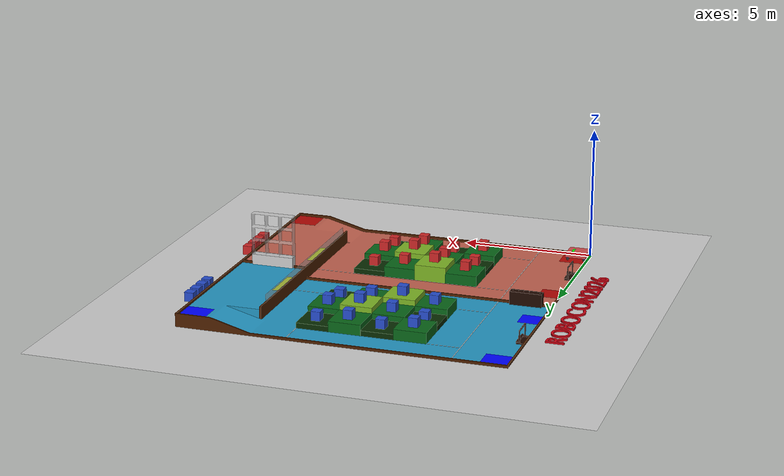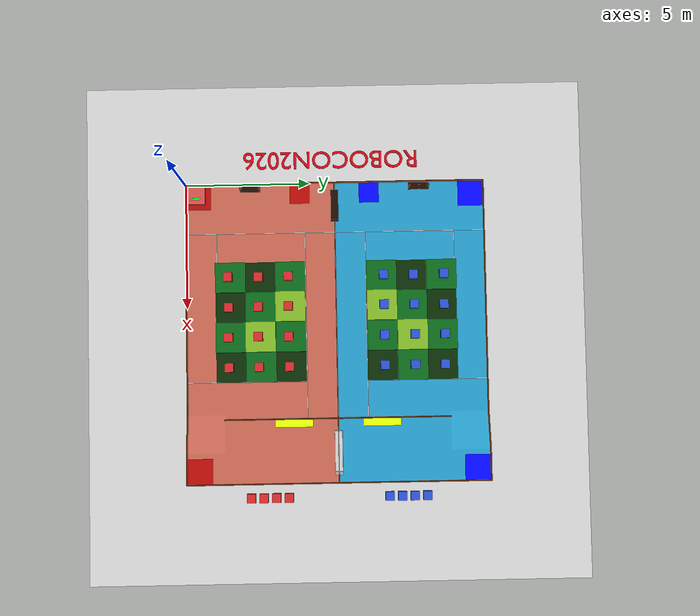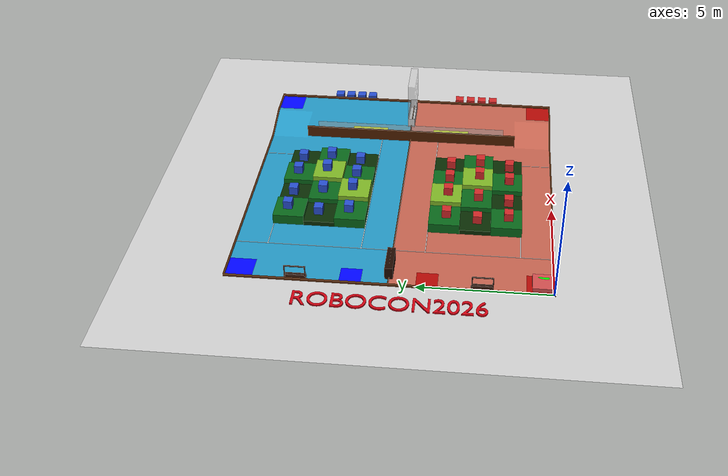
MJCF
<mujoco model="Four_Wheel_Swerve_Chassis">
    <compiler angle="degree" coordinate="local" meshdir="./"/>

    <option gravity="0 0 -9.81" timestep="0.001" iterations="100" tolerance="1e-12">
        <flag contact="enable" energy="enable"/>
    </option>

    <include file="robocon2026_bridge.xml"/>

    <asset>
        <texture type="skybox" builtin="gradient" rgb1="0.3 0.5 0.7" rgb2="0 0 0" width="512" height="512"/>
        <texture name="texplane" type="2d" builtin="checker" rgb1=".2 .3 .4" rgb2=".1 0.15 0.2" width="512" height="512" mark="cross" markrgb=".8 .8 .8"/>
        <material name="matplane" reflectance="0.3" texture="texplane" texrepeat="2 2" texuniform="true"/>
    </asset>

    <worldbody>
        <light directional="true" diffuse=".8 .8 .8" specular=".2 .2 .2" pos="0 0 10" dir="0 0 -1"/>

        <body name="chassis" pos="0.4 0.4 0.209" euler="0 0 0">
            <freejoint name="root"/>

            <geom name="chassis_visual_main" type="box" size="0.4 0.4 0.08" pos="0 0 -0.0" rgba="0.8 0.3 0.3 1" contype="0" conaffinity="0" mass="0"/>

            <geom name="chassis_mass" type="box" size="0.35 0.25 0.04" pos="0.18 0.057 0.0" rgba="0.8 0.3 0.3 0" mass="16" contype="0" conaffinity="0"/>
            <body name="wheel0_pivot" pos="0.325 0.325 -0.093">
                <joint name="wheel0_steer" type="hinge" axis="0 0 1" damping="2.0" armature="0.01"/>
                <geom type="cylinder" size="0.04 0.02" rgba="0.3 0.3 0.8 1" mass="0.5" contype="0" conaffinity="0"/>
                <body name="wheel0" pos="0 0 -0.058">
                    <joint name="wheel0_drive" type="hinge" axis="0 1 0" damping="2.0" armature="0.05"/>
                    <geom type="cylinder" size="0.058 0.02" zaxis="0 1 0" rgba="0.2 0.2 0.2 1" friction="2.5 0.01 0.005" mass="1.0" contype="1" conaffinity="1"/>
                </body>
            </body>

            <body name="wheel1_pivot" pos="0.325 -0.325 -0.093">
                <joint name="wheel1_steer" type="hinge" axis="0 0 1" damping="2.0" armature="0.01"/>
                <geom type="cylinder" size="0.04 0.02" rgba="0.3 0.3 0.8 1" mass="0.5" contype="0" conaffinity="0"/>
                <body name="wheel1" pos="0 0 -0.058">
                    <joint name="wheel1_drive" type="hinge" axis="0 1 0" damping="2.0" armature="0.05"/>
                    <geom type="cylinder" size="0.058 0.02" zaxis="0 1 0" rgba="0.2 0.2 0.2 1" friction="2.5 0.01 0.005" mass="1.0" contype="1" conaffinity="1"/>
                </body>
            </body>

            <body name="wheel2_pivot" pos="-0.325 0.325 -0.093">
                <joint name="wheel2_steer" type="hinge" axis="0 0 1" damping="2.0" armature="0.01"/>
                <geom type="cylinder" size="0.04 0.02" rgba="0.3 0.3 0.8 1" mass="0.5" contype="0" conaffinity="0"/>
                <body name="wheel2" pos="0 0 -0.058">
                    <joint name="wheel2_drive" type="hinge" axis="0 1 0" damping="2.0" armature="0.05"/>
                    <geom type="cylinder" size="0.058 0.02" zaxis="0 1 0" rgba="0.2 0.2 0.2 1" friction="2.5 0.01 0.005" mass="1.0" contype="1" conaffinity="1"/>
                </body>
            </body>

            <body name="wheel3_pivot" pos="-0.325 -0.325 -0.093">
                <joint name="wheel3_steer" type="hinge" axis="0 0 1" damping="2.0" armature="0.01"/>
                <geom type="cylinder" size="0.04 0.02" rgba="0.3 0.3 0.8 1" mass="0.5" contype="0" conaffinity="0"/>
                <body name="wheel3" pos="0 0 -0.058">
                    <joint name="wheel3_drive" type="hinge" axis="0 1 0" damping="2.0" armature="0.05"/>
                    <geom type="cylinder" size="0.058 0.02" zaxis="0 1 0" rgba="0.2 0.2 0.2 1" friction="2.5 0.01 0.005" mass="1.0" contype="1" conaffinity="1"/>
                </body>
            </body>

            <geom name="head_marker" type="box" size="0.05 0.2 0.01" pos="0.18 0 0.07" rgba="0 1 0 1" contype="0" conaffinity="0" mass="0"/>
        </body>
    </worldbody>
    <actuator>
        <position joint="wheel0_steer" name="steer0" kp="50" forcerange="-300 300"/>
        <velocity joint="wheel0_drive" name="drive0" kv="40" forcerange="-180 180"/>
        <position joint="wheel1_steer" name="steer1" kp="50" forcerange="-300 300"/>
        <velocity joint="wheel1_drive" name="drive1" kv="40" forcerange="-180 180"/>
        <position joint="wheel2_steer" name="steer2" kp="50" forcerange="-300 300"/>
        <velocity joint="wheel2_drive" name="drive2" kv="40" forcerange="-180 180"/>
        <position joint="wheel3_steer" name="steer3" kp="50" forcerange="-300 300"/>
        <velocity joint="wheel3_drive" name="drive3" kv="40" forcerange="-180 180"/>
    </actuator>
</mujoco>

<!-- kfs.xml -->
<mujocoinclude>

    <body name="kfs_red_R1_00" pos="7.400 4.100 0.38">
      <joint type="free" damping="1e-4"/>
      <inertial pos="0 0 0" mass="0.01" diaginertia="0.002 0.002 0.002"/>
      <geom group="1" class="scene_collision" conaffinity="1" mesh="kfs_01" material="kfs_R1_KFS_red" />
    </body>
    <body name="kfs_red_01" pos="5.000 4.100 0.78">
      <joint type="free" damping="1e-4"/>
      <inertial pos="0 0 0" mass="0.01" diaginertia="0.002 0.002 0.002"/>
      <geom group="1" class="scene_collision" conaffinity="1" mesh="kfs_03" material="kfs_redR015" />
    </body>
    <body name="kfs_red_02" pos="3.800 4.100 0.58">
      <joint type="free" damping="1e-4"/>
      <inertial pos="0 0 0" mass="0.01" diaginertia="0.002 0.002 0.002"/>
      <geom group="1" class="scene_collision" conaffinity="1" mesh="kfs_04" material="kfs_redR014" />
    </body>
    <body name="kfs_red_03" pos="6.200 2.900 0.78">
      <joint type="free" damping="1e-4"/>
      <inertial pos="0 0 0" mass="0.01" diaginertia="0.002 0.002 0.002"/>
      <geom group="1" class="scene_collision" conaffinity="1" mesh="kfs_05" material="kfs_redR013" />
    </body>
    <body name="kfs_red_04" pos="7.400 2.900 0.58">
      <joint type="free" damping="1e-4"/>
      <inertial pos="0 0 0" mass="0.01" diaginertia="0.002 0.002 0.002"/>
      <geom group="1" class="scene_collision" conaffinity="1" mesh="kfs_06" material="kfs_redR012" />
    </body>
    <body name="kfs_red_05" pos="5.000 2.900 0.58">
      <joint type="free" damping="1e-4"/>
      <inertial pos="0 0 0" mass="0.01" diaginertia="0.002 0.002 0.002"/>
      <geom group="1" class="scene_collision" conaffinity="1" mesh="kfs_07" material="kfs_redR011" />
    </body>
    <body name="kfs_red_06" pos="3.800 2.900 0.38">
      <joint type="free" damping="1e-4"/>
      <inertial pos="0 0 0" mass="0.01" diaginertia="0.002 0.002 0.002"/>
      <geom group="1" class="scene_collision" conaffinity="1" mesh="kfs_08" material="kfs_redR010" />
    </body>
    <body name="kfs_red_07" pos="7.400 1.700 0.38">
      <joint type="free" damping="1e-4"/>
      <inertial pos="0 0 0" mass="0.01" diaginertia="0.002 0.002 0.002"/>
      <geom group="1" class="scene_collision" conaffinity="1" mesh="kfs_09" material="kfs_redR009" />
    </body>
    <body name="kfs_red_08" pos="6.200 4.100 0.58">
      <joint type="free" damping="1e-4"/>
      <inertial pos="0 0 0" mass="0.01" diaginertia="0.002 0.002 0.002"/>
      <geom group="1" class="scene_collision" conaffinity="1" mesh="kfs_10" material="kfs_redR008" />
    </body>
    <body name="kfs_red_09" pos="6.200 1.700 0.58">
      <joint type="free" damping="1e-4"/>
      <inertial pos="0 0 0" mass="0.01" diaginertia="0.002 0.002 0.002"/>
      <geom group="1" class="scene_collision" conaffinity="1" mesh="kfs_11" material="kfs_redR007" />
    </body>
    <body name="kfs_red_10" pos="5.000 1.700 0.38">
      <joint type="free" damping="1e-4"/>
      <inertial pos="0 0 0" mass="0.01" diaginertia="0.002 0.002 0.002"/>
      <geom group="1" class="scene_collision" conaffinity="1" mesh="kfs_12" material="kfs_redR006" />
    </body>
    <body name="kfs_red_11" pos="3.800 1.700 0.58">
      <joint type="free" damping="1e-4"/>
      <inertial pos="0 0 0" mass="0.01" diaginertia="0.002 0.002 0.002"/>
      <geom group="1" class="scene_collision" conaffinity="1" mesh="kfs_13" material="kfs_redR005" />
    </body>
    <body name="kfs_red_12" pos="12.600 4.000 0.2">
      <joint type="free" damping="1e-4"/>
      <inertial pos="0 0 0" mass="0.01" diaginertia="0.002 0.002 0.002"/>
      <geom group="1" class="scene_collision" conaffinity="1" mesh="kfs_14" material="kfs_redR004" />
    </body>
    <body name="kfs_red_13" pos="12.600 3.500 0.2">
      <joint type="free" damping="1e-4"/>
      <inertial pos="0 0 0" mass="0.01" diaginertia="0.002 0.002 0.002"/>
      <geom group="1" class="scene_collision" conaffinity="1" mesh="kfs_15" material="kfs_redR003" />
    </body>
    <body name="kfs_red_14" pos="12.600 3.000 0.2">
      <joint type="free" damping="1e-4"/>
      <inertial pos="0 0 0" mass="0.01" diaginertia="0.002 0.002 0.002"/>
      <geom group="1" class="scene_collision" conaffinity="1" mesh="kfs_16" material="kfs_redR002" />
    </body>
    <body name="kfs_red_15" pos="12.600 2.500 0.2">
      <joint type="free" damping="1e-4"/>
      <inertial pos="0 0 0" mass="0.01" diaginertia="0.002 0.002 0.002"/>
      <geom group="1" class="scene_collision" conaffinity="1" mesh="kfs_17" material="kfs_redR001" />
    </body>
    <body name="kfs_blue_R1_00" pos="7.400 7.900 0.38">
      <joint type="free" damping="1e-4"/>
      <inertial pos="0 0 0" mass="0.01" diaginertia="0.002 0.002 0.002"/>
      <geom group="1" class="scene_collision" conaffinity="1" mesh="kfs_00" material="kfs_R1_KFS_blue" />
    </body>
    <body name="kfs_blue_01" pos="6.200 7.900 0.58">
      <joint type="free" damping="1e-4"/>
      <inertial pos="0 0 0" mass="0.01" diaginertia="0.002 0.002 0.002"/>
      <geom group="1" class="scene_collision" conaffinity="1" mesh="kfs_18" material="kfs_blueR015" />
    </body>
    <body name="kfs_blue_02" pos="5.000 7.900 0.78">
      <joint type="free" damping="1e-4"/>
      <inertial pos="0 0 0" mass="0.01" diaginertia="0.002 0.002 0.002"/>
      <geom group="1" class="scene_collision" conaffinity="1" mesh="kfs_19" material="kfs_blueR014" />
    </body>
    <body name="kfs_blue_03" pos="3.800 7.900 0.58">
      <joint type="free" damping="1e-4"/>
      <inertial pos="0 0 0" mass="0.01" diaginertia="0.002 0.002 0.002"/>
      <geom group="1" class="scene_collision" conaffinity="1" mesh="kfs_20" material="kfs_blueR013" />
    </body>
    <body name="kfs_blue_04" pos="6.200 9.100 0.78">
      <joint type="free" damping="1e-4"/>
      <inertial pos="0 0 0" mass="0.01" diaginertia="0.002 0.002 0.002"/>
      <geom group="1" class="scene_collision" conaffinity="1" mesh="kfs_21" material="kfs_blueR012" />
    </body>
    <body name="kfs_blue_05" pos="7.400 9.100 0.58">
      <joint type="free" damping="1e-4"/>
      <inertial pos="0 0 0" mass="0.01" diaginertia="0.002 0.002 0.002"/>
      <geom group="1" class="scene_collision" conaffinity="1" mesh="kfs_22" material="kfs_blueR011" />
    </body>
    <body name="kfs_blue_06" pos="5.000 9.100 0.58">
      <joint type="free" damping="1e-4"/>
      <inertial pos="0 0 0" mass="0.01" diaginertia="0.002 0.002 0.002"/>
      <geom group="1" class="scene_collision" conaffinity="1" mesh="kfs_23" material="kfs_blueR010" />
    </body>
    <body name="kfs_blue_07" pos="3.800 9.100 0.38">
      <joint type="free" damping="1e-4"/>
      <inertial pos="0 0 0" mass="0.01" diaginertia="0.002 0.002 0.002"/>
      <geom group="1" class="scene_collision" conaffinity="1" mesh="kfs_24" material="kfs_blueR009" />
    </body>
    <body name="kfs_blue_08" pos="7.400 10.300 0.38">
      <joint type="free" damping="1e-4"/>
      <inertial pos="0 0 0" mass="0.01" diaginertia="0.002 0.002 0.002"/>
      <geom group="1" class="scene_collision" conaffinity="1" mesh="kfs_25" material="kfs_blueR008" />
    </body>
    <body name="kfs_blue_09" pos="6.200 10.300 0.58">
      <joint type="free" damping="1e-4"/>
      <inertial pos="0 0 0" mass="0.01" diaginertia="0.002 0.002 0.002"/>
      <geom group="1" class="scene_collision" conaffinity="1" mesh="kfs_26" material="kfs_blueR007" />
    </body>
    <body name="kfs_blue_10" pos="5.000 10.300 0.38">
      <joint type="free" damping="1e-4"/>
      <inertial pos="0 0 0" mass="0.01" diaginertia="0.002 0.002 0.002"/>
      <geom group="1" class="scene_collision" conaffinity="1" mesh="kfs_27" material="kfs_blueR006" />
    </body>
    <body name="kfs_blue_11" pos="3.800 10.300 0.58">
      <joint type="free" damping="1e-4"/>
      <inertial pos="0 0 0" mass="0.01" diaginertia="0.002 0.002 0.002"/>
      <geom group="1" class="scene_collision" conaffinity="1" mesh="kfs_28" material="kfs_blueR005" />
    </body>
    <body name="kfs_blue_12" pos="12.600 8.000 0.2">
      <joint type="free" damping="1e-4"/>
      <inertial pos="0 0 0" mass="0.01" diaginertia="0.002 0.002 0.002"/>
      <geom group="1" class="scene_collision" conaffinity="1" mesh="kfs_29" material="kfs_blueR004" />
    </body>
    <body name="kfs_blue_13" pos="12.600 8.500 0.2">
      <joint type="free" damping="1e-4"/>
      <inertial pos="0 0 0" mass="0.01" diaginertia="0.002 0.002 0.002"/>
      <geom group="1" class="scene_collision" conaffinity="1" mesh="kfs_30" material="kfs_blueR003" />
    </body>
    <body name="kfs_blue_14" pos="12.600 9.000 0.2">
      <joint type="free" damping="1e-4"/>
      <inertial pos="0 0 0" mass="0.01" diaginertia="0.002 0.002 0.002"/>
      <geom group="1" class="scene_collision" conaffinity="1" mesh="kfs_31" material="kfs_blueR002" />
    </body>
    <body name="kfs_blue_15" pos="12.600 9.500 0.2">
      <joint type="free" damping="1e-4"/>
      <inertial pos="0 0 0" mass="0.01" diaginertia="0.002 0.002 0.002"/>
      <geom group="1" class="scene_collision" conaffinity="1" mesh="kfs_32" material="kfs_blueR001" />
    </body>

</mujocoinclude>

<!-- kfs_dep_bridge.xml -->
<mujocoinclude>
  <asset>
    <material name="kfs_R1_KFS_blue" specular="0.5" shininess="0.341747925" texture="kfs_R1_KFS_blue_texture"/>
    <texture type="2d" name="kfs_R1_KFS_blue_texture" file="../../../models/meshes/kfs/textures/blueR1KFS.png"/>
    <material name="kfs_R1_KFS_red" specular="0.5" shininess="0.341747925" texture="kfs_R1_KFS_red_texture"/>
    <texture type="2d" name="kfs_R1_KFS_red_texture" file="../../../models/meshes/kfs/textures/redR1KFS.png"/>

    <material name="kfs_redR001" specular="0.5" shininess="0.341747925" texture="kfs_redR001_texture"/>
    <texture type="2d" name="kfs_redR001_texture" file="../../../models/meshes/kfs/textures/red1.png"/>
    <material name="kfs_redR002" specular="0.5" shininess="0.341747925" texture="kfs_redR002_texture"/>
    <texture type="2d" name="kfs_redR002_texture" file="../../../models/meshes/kfs/textures/red2.png"/>
    <material name="kfs_redR003" specular="0.5" shininess="0.341747925" texture="kfs_redR003_texture"/>
    <texture type="2d" name="kfs_redR003_texture" file="../../../models/meshes/kfs/textures/red3.png"/>
    <material name="kfs_redR004" specular="0.5" shininess="0.341747925" texture="kfs_redR004_texture"/>
    <texture type="2d" name="kfs_redR004_texture" file="../../../models/meshes/kfs/textures/red4.png"/>
    <material name="kfs_redR005" specular="0.5" shininess="0.341747925" texture="kfs_redR005_texture"/>
    <texture type="2d" name="kfs_redR005_texture" file="../../../models/meshes/kfs/textures/red5.png"/>
    <material name="kfs_redR006" specular="0.5" shininess="0.341747925" texture="kfs_redR006_texture"/>
    <texture type="2d" name="kfs_redR006_texture" file="../../../models/meshes/kfs/textures/red6.png"/>
    <material name="kfs_redR007" specular="0.5" shininess="0.341747925" texture="kfs_redR007_texture"/>
    <texture type="2d" name="kfs_redR007_texture" file="../../../models/meshes/kfs/textures/red7.png"/>
    <material name="kfs_redR008" specular="0.5" shininess="0.341747925" texture="kfs_redR008_texture"/>
    <texture type="2d" name="kfs_redR008_texture" file="../../../models/meshes/kfs/textures/red8.png"/>
    <material name="kfs_redR009" specular="0.5" shininess="0.341747925" texture="kfs_redR009_texture"/>
    <texture type="2d" name="kfs_redR009_texture" file="../../../models/meshes/kfs/textures/red9.png"/>
    <material name="kfs_redR010" specular="0.5" shininess="0.341747925" texture="kfs_redR010_texture"/>
    <texture type="2d" name="kfs_redR010_texture" file="../../../models/meshes/kfs/textures/red10.png"/>
    <material name="kfs_redR011" specular="0.5" shininess="0.341747925" texture="kfs_redR011_texture"/>
    <texture type="2d" name="kfs_redR011_texture" file="../../../models/meshes/kfs/textures/red11.png"/>
    <material name="kfs_redR012" specular="0.5" shininess="0.341747925" texture="kfs_redR012_texture"/>
    <texture type="2d" name="kfs_redR012_texture" file="../../../models/meshes/kfs/textures/red12.png"/>
    <material name="kfs_redR013" specular="0.5" shininess="0.341747925" texture="kfs_redR013_texture"/>
    <texture type="2d" name="kfs_redR013_texture" file="../../../models/meshes/kfs/textures/red13.png"/>
    <material name="kfs_redR014" specular="0.5" shininess="0.341747925" texture="kfs_redR014_texture"/>
    <texture type="2d" name="kfs_redR014_texture" file="../../../models/meshes/kfs/textures/red14.png"/>
    <material name="kfs_redR015" specular="0.5" shininess="0.341747925" texture="kfs_redR015_texture"/>
    <texture type="2d" name="kfs_redR015_texture" file="../../../models/meshes/kfs/textures/red15.png"/>

    <material name="kfs_blueR001" rgba="1 1 1 1" specular="0.5" shininess="0.341747772" texture="kfs_blueR001_texture"/>
    <texture type="2d" name="kfs_blueR001_texture" file="../../../models/meshes/kfs/textures/blue1.png"/>
    <material name="kfs_blueR002" specular="0.5" shininess="0.341747925" texture="kfs_blueR002_texture"/>
    <texture type="2d" name="kfs_blueR002_texture" file="../../../models/meshes/kfs/textures/blue2.png"/>
    <material name="kfs_blueR003" specular="0.5" shininess="0.341747925" texture="kfs_blueR003_texture"/>
    <texture type="2d" name="kfs_blueR003_texture" file="../../../models/meshes/kfs/textures/blue3.png"/>
    <material name="kfs_blueR004" specular="0.5" shininess="0.341747925" texture="kfs_blueR004_texture"/>
    <texture type="2d" name="kfs_blueR004_texture" file="../../../models/meshes/kfs/textures/blue4.png"/>
    <material name="kfs_blueR005" specular="0.5" shininess="0.341747925" texture="kfs_blueR005_texture"/>
    <texture type="2d" name="kfs_blueR005_texture" file="../../../models/meshes/kfs/textures/blue5.png"/>
    <material name="kfs_blueR006" specular="0.5" shininess="0.341747925" texture="kfs_blueR006_texture"/>
    <texture type="2d" name="kfs_blueR006_texture" file="../../../models/meshes/kfs/textures/blue6.png"/>
    <material name="kfs_blueR007" specular="0.5" shininess="0.341747925" texture="kfs_blueR007_texture"/>
    <texture type="2d" name="kfs_blueR007_texture" file="../../../models/meshes/kfs/textures/blue7.png"/>
    <material name="kfs_blueR008" specular="0.5" shininess="0.341747925" texture="kfs_blueR008_texture"/>
    <texture type="2d" name="kfs_blueR008_texture" file="../../../models/meshes/kfs/textures/blue8.png"/>
    <material name="kfs_blueR009" specular="0.5" shininess="0.341747925" texture="kfs_blueR009_texture"/>
    <texture type="2d" name="kfs_blueR009_texture" file="../../../models/meshes/kfs/textures/blue9.png"/>
    <material name="kfs_blueR010" specular="0.5" shininess="0.341747925" texture="kfs_blueR010_texture"/>
    <texture type="2d" name="kfs_blueR010_texture" file="../../../models/meshes/kfs/textures/blue10.png"/>
    <material name="kfs_blueR011" specular="0.5" shininess="0.341747925" texture="kfs_blueR011_texture"/>
    <texture type="2d" name="kfs_blueR011_texture" file="../../../models/meshes/kfs/textures/blue11.png"/>
    <material name="kfs_blueR012" specular="0.5" shininess="0.341747925" texture="kfs_blueR012_texture"/>
    <texture type="2d" name="kfs_blueR012_texture" file="../../../models/meshes/kfs/textures/blue12.png"/>
    <material name="kfs_blueR013" specular="0.5" shininess="0.341747925" texture="kfs_blueR013_texture"/>
    <texture type="2d" name="kfs_blueR013_texture" file="../../../models/meshes/kfs/textures/blue13.png"/>
    <material name="kfs_blueR014" specular="0.5" shininess="0.341747925" texture="kfs_blueR014_texture"/>
    <texture type="2d" name="kfs_blueR014_texture" file="../../../models/meshes/kfs/textures/blue14.png"/>
    <material name="kfs_blueR015" specular="0.5" shininess="0.341747925" texture="kfs_blueR015_texture"/>
    <texture type="2d" name="kfs_blueR015_texture" file="../../../models/meshes/kfs/textures/blue15.png"/>

    <mesh name="kfs_00" file="../../../models/meshes/kfs/kfs_00.obj"/>
    <mesh name="kfs_01" file="../../../models/meshes/kfs/kfs_01.obj"/>
    <mesh name="kfs_03" file="../../../models/meshes/kfs/kfs_03.obj"/>
    <mesh name="kfs_04" file="../../../models/meshes/kfs/kfs_04.obj"/>
    <mesh name="kfs_05" file="../../../models/meshes/kfs/kfs_05.obj"/>
    <mesh name="kfs_06" file="../../../models/meshes/kfs/kfs_06.obj"/>
    <mesh name="kfs_07" file="../../../models/meshes/kfs/kfs_07.obj"/>
    <mesh name="kfs_08" file="../../../models/meshes/kfs/kfs_08.obj"/>
    <mesh name="kfs_09" file="../../../models/meshes/kfs/kfs_09.obj"/>
    <mesh name="kfs_10" file="../../../models/meshes/kfs/kfs_10.obj"/>
    <mesh name="kfs_11" file="../../../models/meshes/kfs/kfs_11.obj"/>
    <mesh name="kfs_12" file="../../../models/meshes/kfs/kfs_12.obj"/>
    <mesh name="kfs_13" file="../../../models/meshes/kfs/kfs_13.obj"/>
    <mesh name="kfs_14" file="../../../models/meshes/kfs/kfs_14.obj"/>
    <mesh name="kfs_15" file="../../../models/meshes/kfs/kfs_15.obj"/>
    <mesh name="kfs_16" file="../../../models/meshes/kfs/kfs_16.obj"/>
    <mesh name="kfs_17" file="../../../models/meshes/kfs/kfs_17.obj"/>
    <mesh name="kfs_18" file="../../../models/meshes/kfs/kfs_18.obj"/>
    <mesh name="kfs_19" file="../../../models/meshes/kfs/kfs_19.obj"/>
    <mesh name="kfs_20" file="../../../models/meshes/kfs/kfs_20.obj"/>
    <mesh name="kfs_21" file="../../../models/meshes/kfs/kfs_21.obj"/>
    <mesh name="kfs_22" file="../../../models/meshes/kfs/kfs_22.obj"/>
    <mesh name="kfs_23" file="../../../models/meshes/kfs/kfs_23.obj"/>
    <mesh name="kfs_24" file="../../../models/meshes/kfs/kfs_24.obj"/>
    <mesh name="kfs_25" file="../../../models/meshes/kfs/kfs_25.obj"/>
    <mesh name="kfs_26" file="../../../models/meshes/kfs/kfs_26.obj"/>
    <mesh name="kfs_27" file="../../../models/meshes/kfs/kfs_27.obj"/>
    <mesh name="kfs_28" file="../../../models/meshes/kfs/kfs_28.obj"/>
    <mesh name="kfs_29" file="../../../models/meshes/kfs/kfs_29.obj"/>
    <mesh name="kfs_30" file="../../../models/meshes/kfs/kfs_30.obj"/>
    <mesh name="kfs_31" file="../../../models/meshes/kfs/kfs_31.obj"/>
    <mesh name="kfs_32" file="../../../models/meshes/kfs/kfs_32.obj"/>
  </asset>
</mujocoinclude>
